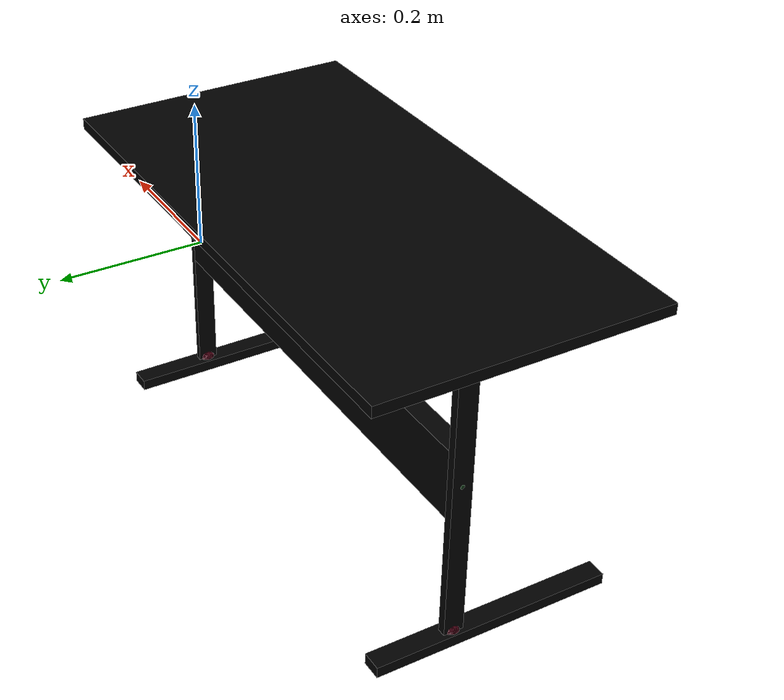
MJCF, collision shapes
<mujoco model="desk_fredrik_0430">
    <custom>
        <numeric data="-0.232087 0.177704 0.003418 0.706993 -0.0127 0.706993 0.0127" name="0_part0_initpos"/>
        <numeric data="0.010241 -0.093193 0.012873 0.0 -0.999909 0.0135 -0.0" name="5_part5_initpos"/>
        <numeric data="0.492174 0.029834 0.01267 -0.497291 0.497291 -0.502694 0.502694" name="4_part4_initpos"/>
        <numeric data="0.204071 0.179597 0.004666 0.013442 -0.706979 -0.013442 -0.706979" name="3_part3_initpos"/>
        <numeric data="0.200774 0.283085 0.007644 0.710702 -0.0 0.0 -0.703493" name="2_part2_initpos"/>
        <numeric data="-0.167313 0.290658 0.007644 0.735632 -0.0 -0.0 -0.677381" name="1_part1_initpos"/>
    </custom>
    <asset>
        <mesh file="desk_fredrik_0430/0.stl" name="part0" scale="0.0005 0.0005 0.0005"/>
        <mesh file="desk_fredrik_0430/5.stl" name="part5" scale="0.0005 0.0005 0.0005"/>
        <mesh file="desk_fredrik_0430/4.stl" name="part4" scale="0.0005 0.0005 0.0005"/>
        <mesh file="desk_fredrik_0430/3.stl" name="part3" scale="0.0005 0.0005 0.0005"/>
        <mesh file="desk_fredrik_0430/2.stl" name="part2" scale="0.0005 0.0005 0.0005"/>
        <mesh file="desk_fredrik_0430/1.stl" name="part1" scale="0.0005 0.0005 0.0005"/>
    </asset>
    <equality>
        <weld active="false" body1="3_part3" body2="5_part5" solimp="1 1 0.5" solref="0.01 0.3"/>
        <weld active="false" body1="0_part0" body2="5_part5" solimp="1 1 0.5" solref="0.01 0.3"/>
        <weld active="false" body1="3_part3" body2="4_part4" solimp="1 1 0.5" solref="0.01 0.3"/>
        <weld active="false" body1="0_part0" body2="4_part4" solimp="1 1 0.5" solref="0.01 0.3"/>
        <weld active="false" body1="3_part3" body2="2_part2" solimp="1 1 0.5" solref="0.01 0.3"/>
        <weld active="false" body1="3_part3" body2="1_part1" solimp="1 1 0.5" solref="0.01 0.3"/>
        <weld active="false" body1="0_part0" body2="2_part2" solimp="1 1 0.5" solref="0.01 0.3"/>
        <weld active="false" body1="0_part0" body2="1_part1" solimp="1 1 0.5" solref="0.01 0.3"/>
    </equality>
    <worldbody>
        <body name="base" pos="0 0 0" quat="1 0 0 0">
            <freejoint></freejoint>
            <body name="0_part0" pos="0.0 0.0 0.0" quat="1 0 0 0">
                <geom conaffinity="0" contype="0" density="0" mesh="part0" name="0_part0_mesh" pos="0.0 0.0 0.0"
                      rgba="0.82 0.71 0.55 1" type="mesh"/>
                <site name="0_part0_horizontal_radius_site" pos="0.0 0.0 0.0" quat="1 0 0 0" rgba="0 0 0 0"
                      size="0.01"/>
                <site name="0_part0_top_site" pos="0.0 0.0 0.18415" quat="1 0 0 0" rgba="0 0 0 0" size="0.01"/>
                <site name="0_part0_bottom_site" pos="0.0 0.0 -0.18415" quat="1 0 0 0" rgba="0 0 0 0" size="0.01"/>
                <site name="0_part0_corner_site8" pos="-0.00469610595 0.0127000046 0.18415" quat="1 0 0 0"
                      rgba="0 0 0 0"
                      size="0.01"/>
                <site name="0_part0_corner_site7" pos="0.00469610595 0.0127000046 0.18415" quat="1 0 0 0" rgba="0 0 0 0"
                      size="0.01"/>
                <site name="0_part0_corner_site6" pos="0.00469610595 -0.0127000046 0.18415" quat="1 0 0 0"
                      rgba="0 0 0 0"
                      size="0.01"/>
                <site name="0_part0_corner_site5" pos="-0.00469610595 -0.0127000046 0.18415" quat="1 0 0 0"
                      rgba="0 0 0 0"
                      size="0.01"/>
                <site name="0_part0_corner_site4" pos="-0.00469610595 0.0127000046 -0.18415" quat="1 0 0 0"
                      rgba="0 0 0 0"
                      size="0.01"/>
                <site name="0_part0_corner_site3" pos="0.00469610595 0.0127000046 -0.18415" quat="1 0 0 0"
                      rgba="0 0 0 0"
                      size="0.01"/>
                <site name="0_part0_corner_site2" pos="0.00469610595 -0.0127000046 -0.18415" quat="1 0 0 0"
                      rgba="0 0 0 0"
                      size="0.01"/>
                <site name="0_part0_corner_site1" pos="-0.00469610595 -0.0127000046 -0.18415" quat="1 0 0 0"
                      rgba="0 0 0 0"
                      size="0.01"/>
                <site name="leg-base,0,180,conn_site1" pos="-0.0007605600000000001 0.0 -0.18282595000000001"
                      quat="0 0 1 0"
                      rgba="0.9019 0.0980 0.2941 0.3" size="0.01"/>
                <site name="leg-midsupport,0,180,conn_site1" pos="-0.00445 0.0 0.023" quat="0.7071067 0 0.7071068 0"
                      rgba="0.2352 0.7058 0.2941 0.3" size="0.01"/>
                <site name="leg-toppanel,0,180,conn_site1" pos="0.0 0.0 0.1721" quat="1 0 0 0"
                      rgba="1.0 0.8823 0.0980 0.3"
                      size="0.01"/>
                <geom density="50" name="noviz_collision_0_part0_0" pos="-0.00067584 0.0 -0.004087565" quat="1 0 0 0"
                      rgba="0 0 0 0" size="0.00402027 0.012700005 0.1800624" solref="0.001 1" type="box"/>
            </body>
            <body name="5_part5" pos="-0.3094328003 -0.0507999954 0.18415" quat="1 0 0 0">
                <geom conaffinity="0" contype="0" density="0" mesh="part5" name="5_part5_mesh" pos="0.0 0.0 0.0"
                      rgba="0.82 0.71 0.55 1" type="mesh"/>
                <site name="5_part5_horizontal_radius_site" pos="0.0 0.0 0.0" quat="1 0 0 0" rgba="0 0 0 0"
                      size="0.01"/>
                <site name="5_part5_top_site" pos="0.0 0.0 0.0126999998" quat="1 0 0 0" rgba="0 0 0 0" size="0.01"/>
                <site name="5_part5_bottom_site" pos="0.0 0.0 -0.0126999998" quat="1 0 0 0" rgba="0 0 0 0" size="0.01"/>
                <site name="5_part5_corner_site8" pos="-0.34925 0.17780000305 0.0126999998" quat="1 0 0 0"
                      rgba="0 0 0 0"
                      size="0.01"/>
                <site name="5_part5_corner_site7" pos="0.34925 0.17780000305 0.0126999998" quat="1 0 0 0" rgba="0 0 0 0"
                      size="0.01"/>
                <site name="5_part5_corner_site6" pos="0.34925 -0.17780000305 0.0126999998" quat="1 0 0 0"
                      rgba="0 0 0 0"
                      size="0.01"/>
                <site name="5_part5_corner_site5" pos="-0.34925 -0.17780000305 0.0126999998" quat="1 0 0 0"
                      rgba="0 0 0 0"
                      size="0.01"/>
                <site name="5_part5_corner_site4" pos="-0.34925 0.17780000305 -0.0126999998" quat="1 0 0 0"
                      rgba="0 0 0 0"
                      size="0.01"/>
                <site name="5_part5_corner_site3" pos="0.34925 0.17780000305 -0.0126999998" quat="1 0 0 0"
                      rgba="0 0 0 0"
                      size="0.01"/>
                <site name="5_part5_corner_site2" pos="0.34925 -0.17780000305 -0.0126999998" quat="1 0 0 0"
                      rgba="0 0 0 0"
                      size="0.01"/>
                <site name="5_part5_corner_site1" pos="-0.34925 -0.17780000305 -0.0126999998" quat="1 0 0 0"
                      rgba="0 0 0 0"
                      size="0.01"/>
                <site name="toppanel-leg,0,180,conn_site2" pos="-0.3094672 0.0508 -0.01204999" quat="1 0 0 0"
                      rgba="1.0 0.8823 0.0980 0.3" size="0.01"/>
                <site name="toppanel-leg,0,180,conn_site1" pos="0.3094328 0.0508 -0.01204999" quat="1 0 0 0"
                      rgba="1.0 0.8823 0.0980 0.3" size="0.01"/>
                <geom density="50" name="noviz_collision_5_part5_0" pos="0.0 0.00410452 0.005800005" quat="1 0 0 0"
                      rgba="0 0 0 0" size="0.34925 0.18190450000000002 0.007" solref="0.001 1" type="box"/>
                <geom density="50" name="noviz_collision_5_part5_1" pos="-0.30806720000000004 -5.0005e-05 -0.005699995"
                      quat="1 0 0 0" rgba="0 0 0 0" size="0.00625 0.15225 0.007" solref="0.001 1" type="box"/>
                <geom density="50" name="noviz_collision_5_part5_2" pos="0.3080328 -5.0005e-05 -0.005699995"
                      quat="1 0 0 0"
                      rgba="0 0 0 0" size="0.00625 0.15225 0.007" solref="0.001 1" type="box"/>
                <geom density="50" name="noviz_collision_5_part5_3" pos="-0.0055672 0.1215 -0.005699995" quat="1 0 0 0"
                      rgba="0 0 0 0" size="0.30875 0.00625 0.007" solref="0.001 1" type="box"/>
                <geom density="50" name="noviz_collision_5_part5_4" pos="-0.0055672 -0.09190000000000001 -0.005699995"
                      quat="1 0 0 0" rgba="0 0 0 0" size="0.30875 0.00625 0.007" solref="0.001 1" type="box"/>
            </body>
            <body name="4_part4" pos="-0.3094328022 0.0 0.0232076782" quat="1 0 0 0">
                <geom conaffinity="0" contype="0" density="0" mesh="part4" name="4_part4_mesh" pos="0.0 0.0 0.0"
                      rgba="0.82 0.71 0.55 1" type="mesh"/>
                <site name="4_part4_horizontal_radius_site" pos="0.0 0.0 0.0" quat="1 0 0 0" rgba="0 0 0 0"
                      size="0.01"/>
                <site name="4_part4_top_site" pos="0.0 0.0 0.04444999695" quat="1 0 0 0" rgba="0 0 0 0" size="0.01"/>
                <site name="4_part4_bottom_site" pos="0.0 0.0 -0.04444999695" quat="1 0 0 0" rgba="0 0 0 0"
                      size="0.01"/>
                <site name="4_part4_corner_site8" pos="-0.30473669625000005 0.0127000046 0.04444999695" quat="1 0 0 0"
                      rgba="0 0 0 0" size="0.01"/>
                <site name="4_part4_corner_site7" pos="0.30473669625000005 0.0127000046 0.04444999695" quat="1 0 0 0"
                      rgba="0 0 0 0" size="0.01"/>
                <site name="4_part4_corner_site6" pos="0.30473669625000005 -0.0127000046 0.04444999695" quat="1 0 0 0"
                      rgba="0 0 0 0" size="0.01"/>
                <site name="4_part4_corner_site5" pos="-0.30473669625000005 -0.0127000046 0.04444999695" quat="1 0 0 0"
                      rgba="0 0 0 0" size="0.01"/>
                <site name="4_part4_corner_site4" pos="-0.30473669625000005 0.0127000046 -0.04444999695" quat="1 0 0 0"
                      rgba="0 0 0 0" size="0.01"/>
                <site name="4_part4_corner_site3" pos="0.30473669625000005 0.0127000046 -0.04444999695" quat="1 0 0 0"
                      rgba="0 0 0 0" size="0.01"/>
                <site name="4_part4_corner_site2" pos="0.30473669625000005 -0.0127000046 -0.04444999695" quat="1 0 0 0"
                      rgba="0 0 0 0" size="0.01"/>
                <site name="4_part4_corner_site1" pos="-0.30473669625000005 -0.0127000046 -0.04444999695" quat="1 0 0 0"
                      rgba="0 0 0 0" size="0.01"/>
                <site name="midsupport-leg,0,180,conn_site2" pos="-0.30456720000000004 0.0 -0.00020768000000000002"
                      quat="0.7071067 0 -0.7071068 0" rgba="0.2352 0.7058 0.2941 0.3" size="0.01"/>
                <site name="midsupport-leg,0,180,conn_site1" pos="0.3049828 0.0 -0.00020768000000000002"
                      quat="0.7071067 0 0.7071068 0" rgba="0.2352 0.7058 0.2941 0.3" size="0.01"/>
                <geom density="50" name="noviz_collision_4_part4_0" pos="0.0 0.0 0.0" quat="1 0 0 0" rgba="0 0 0 0"
                      size="0.30473669999999997 0.012700005 0.044449995" solref="0.001 1" type="box"/>
            </body>
            <body name="3_part3" pos="-0.6188655814999999 0.0 0.0" quat="1 0 0 0">
                <geom conaffinity="0" contype="0" density="0" mesh="part3" name="3_part3_mesh" pos="0.0 0.0 0.0"
                      rgba="0.82 0.71 0.55 1" type="mesh"/>
                <site name="3_part3_horizontal_radius_site" pos="0.0 0.0 0.0" quat="1 0 0 0" rgba="0 0 0 0"
                      size="0.01"/>
                <site name="3_part3_top_site" pos="0.0 0.0 0.18415" quat="1 0 0 0" rgba="0 0 0 0" size="0.01"/>
                <site name="3_part3_bottom_site" pos="0.0 0.0 -0.18415" quat="1 0 0 0" rgba="0 0 0 0" size="0.01"/>
                <site name="3_part3_corner_site8" pos="-0.004696083050000001 0.0127000046 0.18415" quat="1 0 0 0"
                      rgba="0 0 0 0" size="0.01"/>
                <site name="3_part3_corner_site7" pos="0.004696083050000001 0.0127000046 0.18415" quat="1 0 0 0"
                      rgba="0 0 0 0" size="0.01"/>
                <site name="3_part3_corner_site6" pos="0.004696083050000001 -0.0127000046 0.18415" quat="1 0 0 0"
                      rgba="0 0 0 0" size="0.01"/>
                <site name="3_part3_corner_site5" pos="-0.004696083050000001 -0.0127000046 0.18415" quat="1 0 0 0"
                      rgba="0 0 0 0" size="0.01"/>
                <site name="3_part3_corner_site4" pos="-0.004696083050000001 0.0127000046 -0.18415" quat="1 0 0 0"
                      rgba="0 0 0 0" size="0.01"/>
                <site name="3_part3_corner_site3" pos="0.004696083050000001 0.0127000046 -0.18415" quat="1 0 0 0"
                      rgba="0 0 0 0" size="0.01"/>
                <site name="3_part3_corner_site2" pos="0.004696083050000001 -0.0127000046 -0.18415" quat="1 0 0 0"
                      rgba="0 0 0 0" size="0.01"/>
                <site name="3_part3_corner_site1" pos="-0.004696083050000001 -0.0127000046 -0.18415" quat="1 0 0 0"
                      rgba="0 0 0 0" size="0.01"/>
                <site name="leg-base,0,180,conn_site2" pos="0.0007605600000000001 0.0 -0.18282595000000001"
                      quat="0 0 1 0"
                      rgba="0.9019 0.0980 0.2941 0.3" size="0.01"/>
                <site name="leg-midsupport,0,180,conn_site2" pos="0.0048655999999999994 0.0 0.023"
                      quat="0.7071067 0 -0.7071068 0" rgba="0.2352 0.7058 0.2941 0.3" size="0.01"/>
                <site name="leg-toppanel,0,180,conn_site2" pos="-3.4424999999999997e-05 0.0 0.1721" quat="1 0 0 0"
                      rgba="1.0 0.8823 0.0980 0.3" size="0.01"/>
                <geom density="50" name="noviz_collision_3_part3_0" pos="0.00067584 0.0 -0.004087565" quat="1 0 0 0"
                      rgba="0 0 0 0" size="0.005371885 0.012700005 0.1800624" solref="0.001 1" type="box"/>
            </body>
            <body name="2_part2" pos="-0.6173444983 -0.05079999255 -0.18917595825" quat="1 0 0 0">
                <geom conaffinity="0" contype="0" density="0" mesh="part2" name="2_part2_mesh" pos="0.0 0.0 0.0"
                      rgba="0.82 0.71 0.55 1" type="mesh"/>
                <site name="2_part2_horizontal_radius_site" pos="-2e-10 0.0 0.0" quat="1 0 0 0" rgba="0 0 0 0"
                      size="0.01"/>
                <site name="2_part2_top_site" pos="-2.5e-10 0.0 0.00767404175" quat="1 0 0 0" rgba="0 0 0 0"
                      size="0.01"/>
                <site name="2_part2_bottom_site" pos="-2.5e-10 0.0 -0.00767404175" quat="1 0 0 0" rgba="0 0 0 0"
                      size="0.01"/>
                <site name="2_part2_corner_site8" pos="-0.012700001200000002 0.15240000915 0.00767404175" quat="1 0 0 0"
                      rgba="0 0 0 0" size="0.01"/>
                <site name="2_part2_corner_site7" pos="0.012700000749999999 0.15240000915 0.00767404175" quat="1 0 0 0"
                      rgba="0 0 0 0" size="0.01"/>
                <site name="2_part2_corner_site6" pos="0.012700000749999999 -0.15240000915 0.00767404175" quat="1 0 0 0"
                      rgba="0 0 0 0" size="0.01"/>
                <site name="2_part2_corner_site5" pos="-0.012700001200000002 -0.15240000915 0.00767404175"
                      quat="1 0 0 0"
                      rgba="0 0 0 0" size="0.01"/>
                <site name="2_part2_corner_site4" pos="-0.012700001200000002 0.15240000915 -0.00767404175"
                      quat="1 0 0 0"
                      rgba="0 0 0 0" size="0.01"/>
                <site name="2_part2_corner_site3" pos="0.012700000749999999 0.15240000915 -0.00767404175" quat="1 0 0 0"
                      rgba="0 0 0 0" size="0.01"/>
                <site name="2_part2_corner_site2" pos="0.012700000749999999 -0.15240000915 -0.00767404175"
                      quat="1 0 0 0"
                      rgba="0 0 0 0" size="0.01"/>
                <site name="2_part2_corner_site1" pos="-0.012700001200000002 -0.15240000915 -0.00767404175"
                      quat="1 0 0 0"
                      rgba="0 0 0 0" size="0.01"/>
                <site name="base-leg,0,180,conn_site2" pos="-0.0007605600000000001 0.0508 0.006350005000000001"
                      quat="0 0 1 0" rgba="0.9019 0.0980 0.2941 0.3" size="0.01"/>
                <geom density="50" name="noviz_collision_2_part2_0" pos="-2.13e-05 0.000433635 -0.000515535"
                      quat="1 0 0 0"
                      rgba="0 0 0 0" size="0.012678710000000001 0.15283365000000002 0.00715851" solref="0.001 1"
                      type="box"/>
            </body>
            <body name="1_part1" pos="-0.0015211156 -0.05079999255 -0.18917595825" quat="1 0 0 0">
                <geom conaffinity="0" contype="0" density="0" mesh="part1" name="1_part1_mesh" pos="0.0 0.0 0.0"
                      rgba="0.82 0.71 0.55 1" type="mesh"/>
                <site name="1_part1_horizontal_radius_site" pos="2e-10 0.0 0.0" quat="1 0 0 0" rgba="0 0 0 0"
                      size="0.01"/>
                <site name="1_part1_top_site" pos="2e-10 0.0 0.00767404175" quat="1 0 0 0" rgba="0 0 0 0" size="0.01"/>
                <site name="1_part1_bottom_site" pos="2e-10 0.0 -0.00767404175" quat="1 0 0 0" rgba="0 0 0 0"
                      size="0.01"/>
                <site name="1_part1_corner_site8" pos="-0.0127000141 0.15240000915 0.00767404175" quat="1 0 0 0"
                      rgba="0 0 0 0" size="0.01"/>
                <site name="1_part1_corner_site7" pos="0.012700014550000001 0.15240000915 0.00767404175" quat="1 0 0 0"
                      rgba="0 0 0 0" size="0.01"/>
                <site name="1_part1_corner_site6" pos="0.012700014550000001 -0.15240000915 0.00767404175" quat="1 0 0 0"
                      rgba="0 0 0 0" size="0.01"/>
                <site name="1_part1_corner_site5" pos="-0.0127000141 -0.15240000915 0.00767404175" quat="1 0 0 0"
                      rgba="0 0 0 0" size="0.01"/>
                <site name="1_part1_corner_site4" pos="-0.0127000141 0.15240000915 -0.00767404175" quat="1 0 0 0"
                      rgba="0 0 0 0" size="0.01"/>
                <site name="1_part1_corner_site3" pos="0.012700014550000001 0.15240000915 -0.00767404175" quat="1 0 0 0"
                      rgba="0 0 0 0" size="0.01"/>
                <site name="1_part1_corner_site2" pos="0.012700014550000001 -0.15240000915 -0.00767404175"
                      quat="1 0 0 0"
                      rgba="0 0 0 0" size="0.01"/>
                <site name="1_part1_corner_site1" pos="-0.0127000141 -0.15240000915 -0.00767404175" quat="1 0 0 0"
                      rgba="0 0 0 0" size="0.01"/>
                <site name="base-leg,0,180,conn_site1" pos="0.0007605600000000001 0.0508 0.006350005000000001"
                      quat="0 0 1 0" rgba="0.9019 0.0980 0.2941 0.3" size="0.01"/>
                <geom density="50" name="noviz_collision_1_part1_0" pos="2.128e-05 0.000433635 -0.000515535"
                      quat="1 0 0 0"
                      rgba="0 0 0 0" size="0.012721295 0.15283365000000002 0.00715851" solref="0.001 1" type="box"/>
            </body>
        </body>
    </worldbody>
    <actuator/>
    <sensor/>
    <contact/>
    <default/>
</mujoco>
